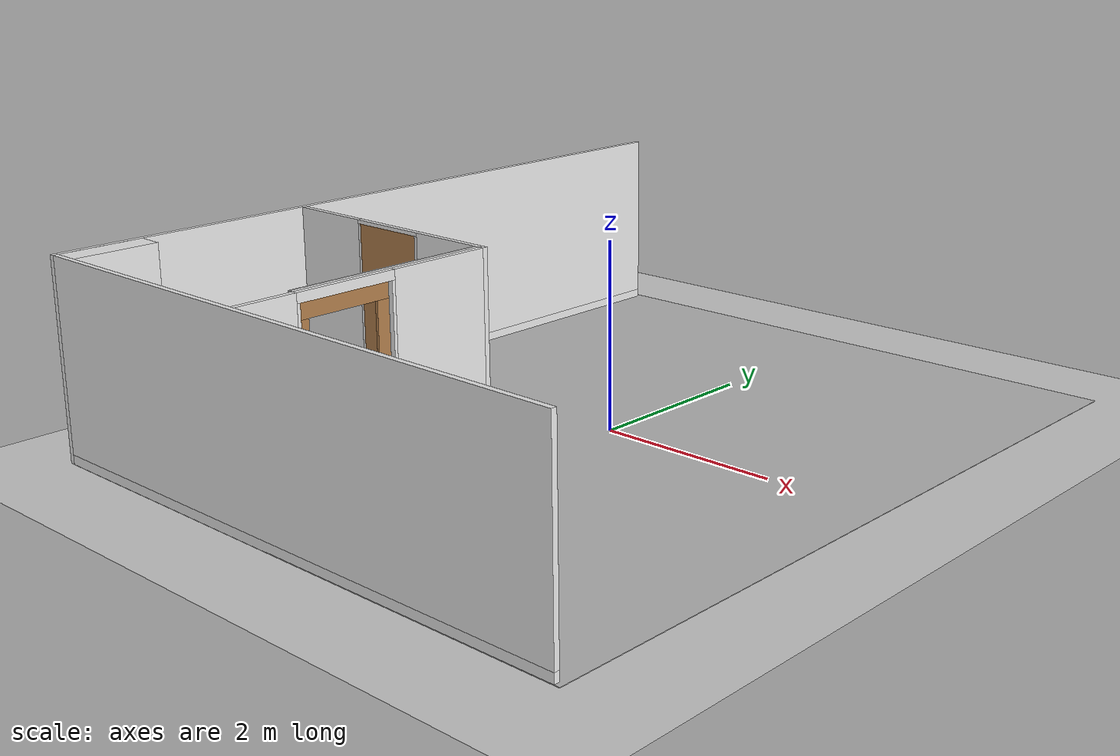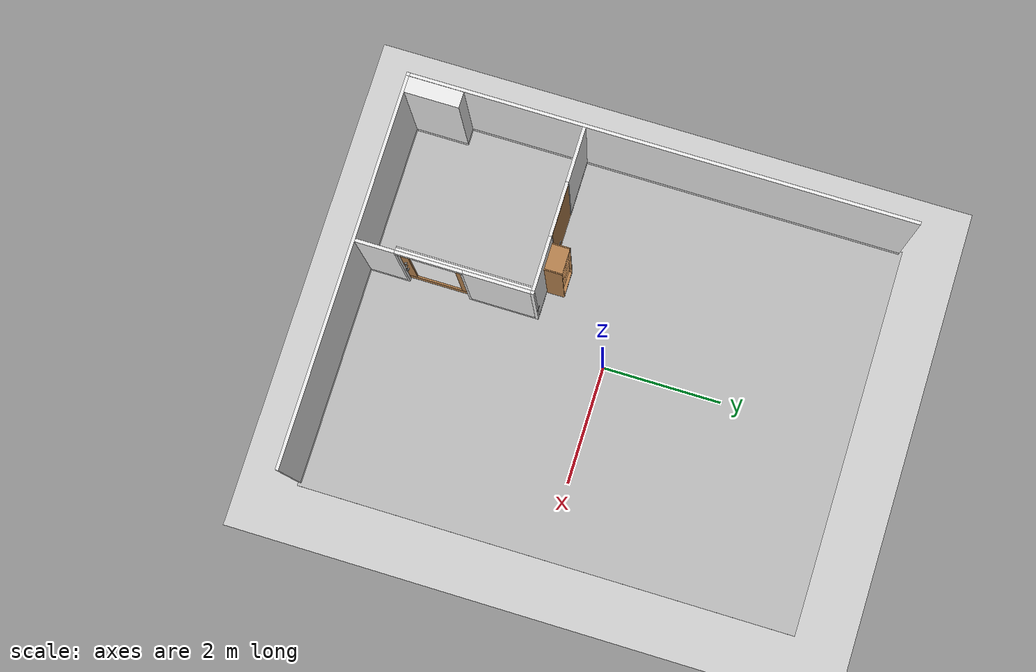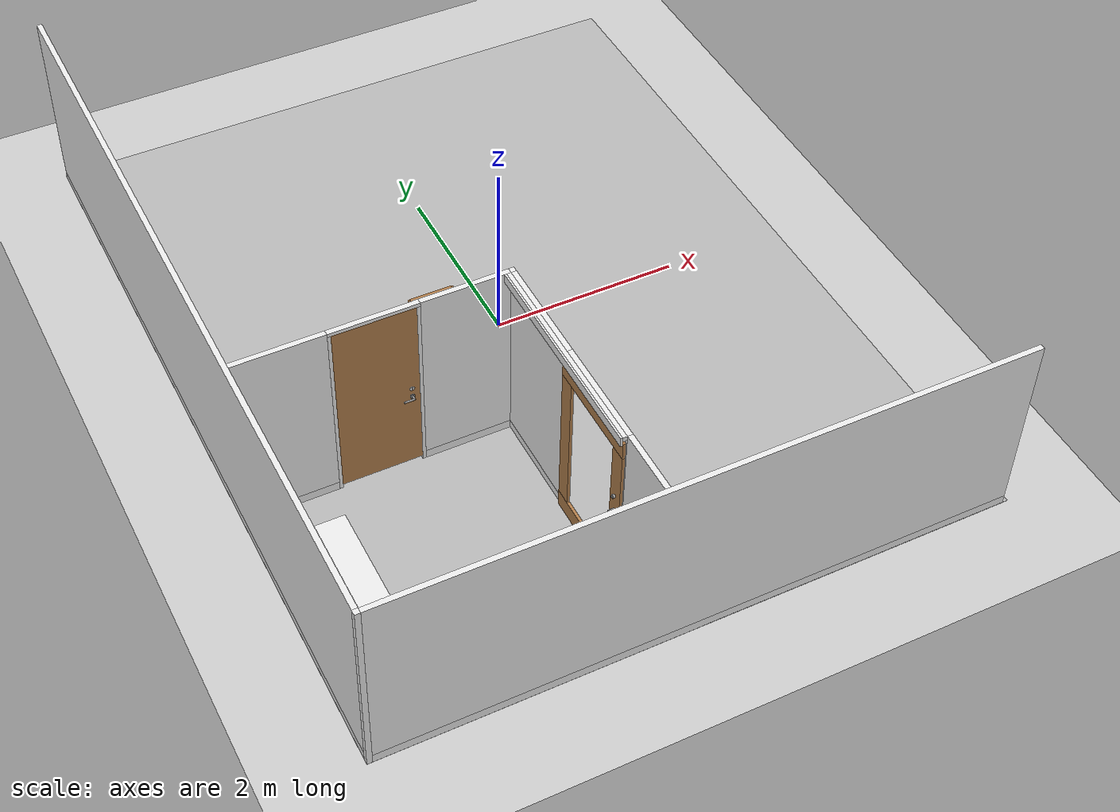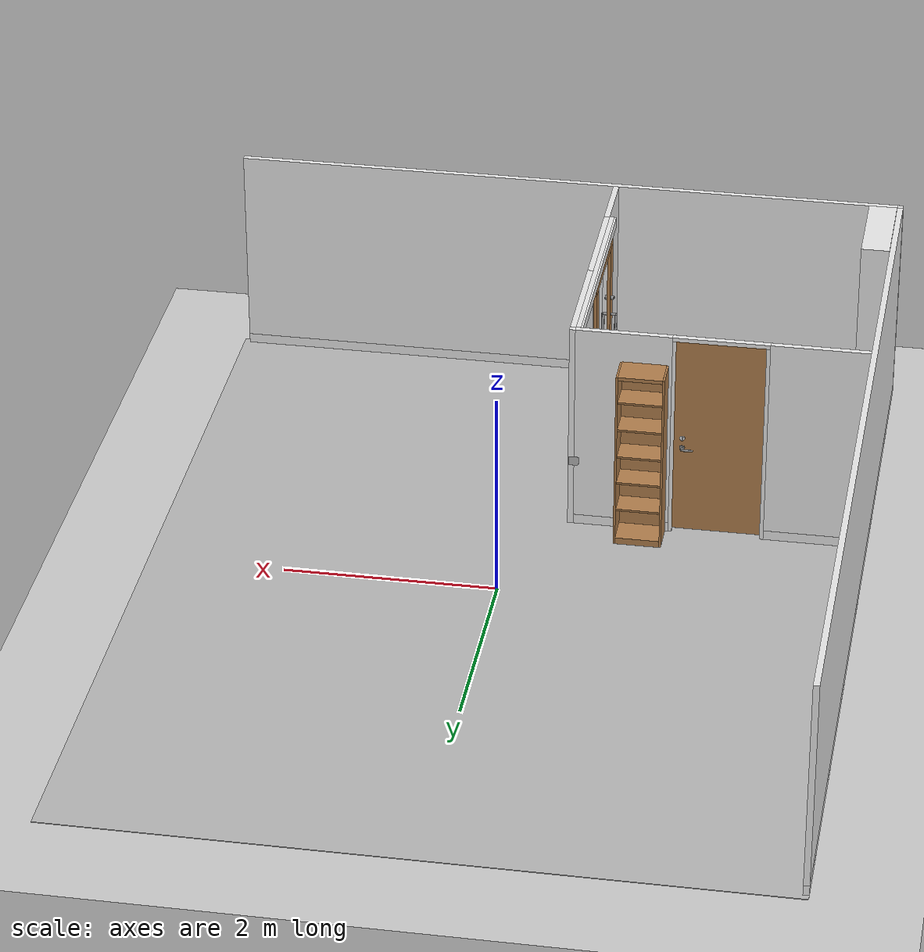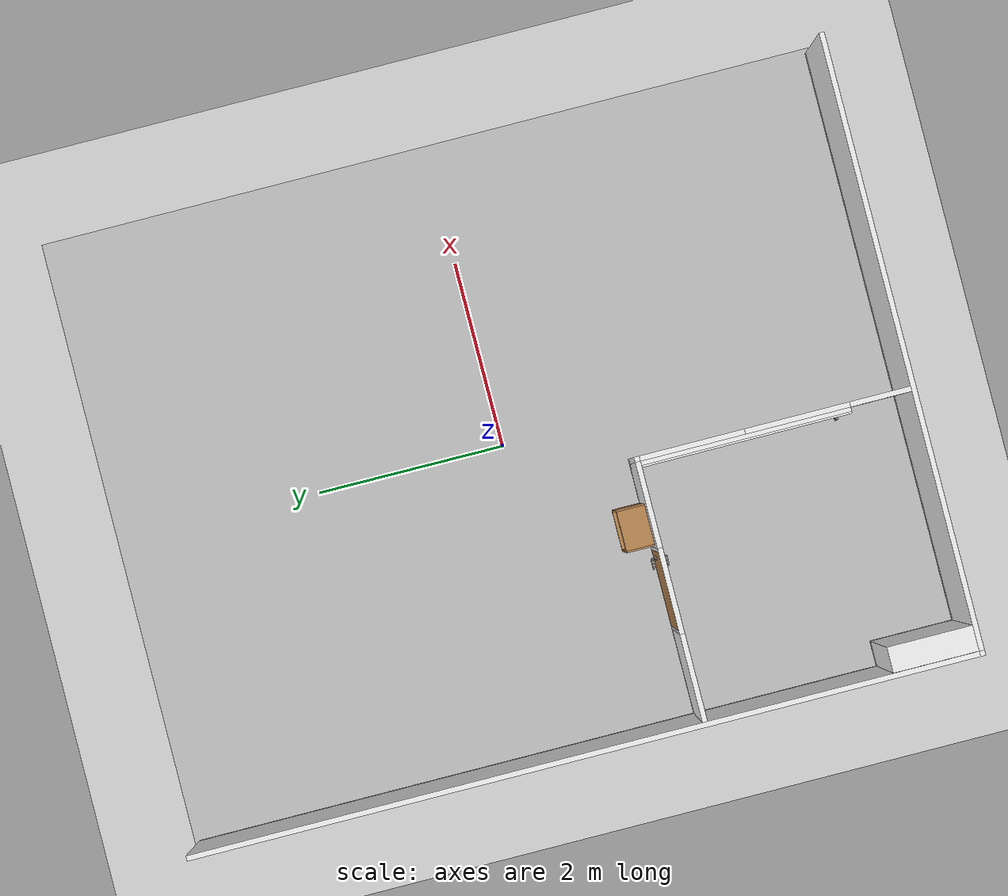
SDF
<sdf version="1.7">
 <world name="default">
  <model name="ground_plane">
   <static>1</static>
   <link name="link">
    <collision name="collision">
     <geometry><plane><normal>0 0 1</normal><size>100 100</size></plane></geometry>
     <surface>
      <contact><collide_bitmask>65535</collide_bitmask></contact>
      <friction><ode><mu>100</mu><mu2>50</mu2></ode></friction>
     </surface>
    </collision>
    <visual name="visual">
     <cast_shadows>0</cast_shadows>
     <geometry><plane><normal>0 0 1</normal><size>100 100</size></plane></geometry>
     <material>
      <script><uri>file://media/materials/scripts/gazebo.material</uri><name>Gazebo/Grey</name></script>
     </material>
    </visual>
   </link>
  </model>
  <model name="gplane">
   <pose>0 0 0.001 0 -0 0</pose>
   <link name="body">
    <visual name="gplane_vis">
     <geometry><plane><normal>0 0 1</normal><size>6.585 8.405</size></plane></geometry>
     <material>
      <script>
       <uri>model://base_materials/carpet/scripts</uri>
       <uri>model://base_materials/carpet/textures</uri>
       <name>carpet/carpet01</name>
      </script>
     </material>
     <cast_shadows>0</cast_shadows>
    </visual>
    <velocity_decay><linear>0</linear><angular>0</angular></velocity_decay>
   </link>
   <static>1</static>
  </model>
  <model name="wall_back_b">
   <link name="link">
    <inertial>
     <mass>50</mass>
     <inertia><ixx>1</ixx><ixy>0</ixy><ixz>0</ixz><iyy>1</iyy><iyz>0</iyz><izz>1</izz></inertia>
    </inertial>
    <visual name="bottom_frame">
     <pose>0 0 0.05 0 -0 0</pose>
     <geometry><box><size>0.055 8.295 0.1</size></box></geometry>
     <material>
      <script><uri>model://base_materials/color/scripts</uri><name>hsr_color/white</name></script>
     </material>
    </visual>
    <collision name="collision_bottom_frame">
     <pose>0 0 0.05 0 -0 0</pose>
     <geometry><box><size>0.055 8.295 0.1</size></box></geometry>
    </collision>
    <visual name="wall">
     <pose>0 0 1.095 0 -0 0</pose>
     <geometry><box><size>0.055 8.295 1.99</size></box></geometry>
     <material>
      <script>
       <uri>model://base_materials/wall/scripts</uri>
       <uri>model://base_materials/wall/textures</uri>
       <name>wall/white_noise</name>
      </script>
     </material>
    </visual>
    <collision name="collision_wall">
     <pose>0 0 1.095 0 -0 0</pose>
     <geometry><box><size>0.055 8.295 1.99</size></box></geometry>
    </collision>
    <velocity_decay><linear>0</linear><angular>0</angular></velocity_decay>
   </link>
   <static>1</static>
   <pose>-3.265 0 0 0 -0 0</pose>
  </model>
  <model name="wall_back_c">
   <link name="link">
    <inertial>
     <mass>50</mass>
     <inertia><ixx>1</ixx><ixy>0</ixy><ixz>0</ixz><iyy>1</iyy><iyz>0</iyz><izz>1</izz></inertia>
    </inertial>
    <visual name="_frame">
     <pose>0 0 1.045 0 -0 0</pose>
     <geometry><box><size>0.055 0.055 2.09</size></box></geometry>
     <material>
      <script><uri>model://base_materials/color/scripts</uri><name>hsr_color/white</name></script>
     </material>
    </visual>
    <collision name="collision_frame">
     <pose>0 0 1.045 0 -0 0</pose>
     <geometry><box><size>0.055 0.055 2.09</size></box></geometry>
    </collision>
    <velocity_decay><linear>0</linear><angular>0</angular></velocity_decay>
   </link>
   <static>1</static>
   <pose>-3.265 -4.175 0 0 -0 0</pose>
  </model>
  <model name="wall_left_a">
   <link name="link">
    <inertial>
     <mass>50</mass>
     <inertia><ixx>1</ixx><ixy>0</ixy><ixz>0</ixz><iyy>1</iyy><iyz>0</iyz><izz>1</izz></inertia>
    </inertial>
    <visual name="bottom_frame">
     <pose>0 0 0.05 0 -0 0</pose>
     <geometry><box><size>0.055 6.475 0.1</size></box></geometry>
     <material>
      <script><uri>model://base_materials/color/scripts</uri><name>hsr_color/white</name></script>
     </material>
    </visual>
    <collision name="collision_bottom_frame">
     <pose>0 0 0.05 0 -0 0</pose>
     <geometry><box><size>0.055 6.475 0.1</size></box></geometry>
    </collision>
    <visual name="wall">
     <pose>0 0 1.095 0 -0 0</pose>
     <geometry><box><size>0.055 6.475 1.99</size></box></geometry>
     <material>
      <script>
       <uri>model://base_materials/wall/scripts</uri>
       <uri>model://base_materials/wall/textures</uri>
       <name>wall/white_noise</name>
      </script>
     </material>
    </visual>
    <collision name="collision_wall">
     <pose>0 0 1.095 0 -0 0</pose>
     <geometry><box><size>0.055 6.475 1.99</size></box></geometry>
    </collision>
    <velocity_decay><linear>0</linear><angular>0</angular></velocity_decay>
   </link>
   <static>1</static>
   <pose>0 -4.175 0 0 -0 1.5708</pose>
  </model>
  <model name="wall_center_long_e">
   <link name="link">
    <inertial>
     <mass>50</mass>
     <inertia><ixx>1</ixx><ixy>0</ixy><ixz>0</ixz><iyy>1</iyy><iyz>0</iyz><izz>1</izz></inertia>
    </inertial>
    <visual name="_frame">
     <pose>0 0 1.045 0 -0 0</pose>
     <geometry><box><size>0.055 0.055 2.09</size></box></geometry>
     <material>
      <script><uri>model://base_materials/color/scripts</uri><name>hsr_color/white</name></script>
     </material>
    </visual>
    <collision name="collision_frame">
     <pose>0 0 1.045 0 -0 0</pose>
     <geometry><box><size>0.055 0.055 2.09</size></box></geometry>
    </collision>
    <velocity_decay><linear>0</linear><angular>0</angular></velocity_decay>
   </link>
   <static>1</static>
   <pose>-0.49 -1.28 0 0 -0 1.5708</pose>
  </model>
  <model name="wall_center_long_f">
   <link name="link">
    <inertial>
     <mass>50</mass>
     <inertia><ixx>1</ixx><ixy>0</ixy><ixz>0</ixz><iyy>1</iyy><iyz>0</iyz><izz>1</izz></inertia>
    </inertial>
    <visual name="bottom_frame">
     <pose>0 0 0.05 0 -0 0</pose>
     <geometry><box><size>0.055 0.9 0.1</size></box></geometry>
     <material>
      <script><uri>model://base_materials/color/scripts</uri><name>hsr_color/white</name></script>
     </material>
    </visual>
    <collision name="collision_bottom_frame">
     <pose>0 0 0.05 0 -0 0</pose>
     <geometry><box><size>0.055 0.9 0.1</size></box></geometry>
    </collision>
    <visual name="wall">
     <pose>0 0 1.095 0 -0 0</pose>
     <geometry><box><size>0.055 0.9 1.99</size></box></geometry>
     <material>
      <script>
       <uri>model://base_materials/wall/scripts</uri>
       <uri>model://base_materials/wall/textures</uri>
       <name>wall/white_noise</name>
      </script>
     </material>
    </visual>
    <visual name="marker_0013">
     <pose>0.035 -0.45 0.69 3.14159 1.57079 -9.3e-05</pose>
     <geometry><box><size>0.09 0.09 0.0001</size></box></geometry>
     <material>
      <script>
       <uri>model://marker/0013/scripts</uri>
       <uri>model://marker/0013/textures</uri>
       <name>Marker/0013</name>
      </script>
     </material>
    </visual>
    <collision name="collision_wall">
     <pose>0 0 1.095 0 -0 0</pose>
     <geometry><box><size>0.055 0.9 1.99</size></box></geometry>
    </collision>
    <velocity_decay><linear>0</linear><angular>0</angular></velocity_decay>
   </link>
   <static>1</static>
   <pose>-0.9675 -1.28 0 0 -0 1.5708</pose>
  </model>
  <model name="wall_center_long_g">
   <link name="link">
    <pose>0 0.45 0 0 -0 0</pose>
    <inertial>
     <mass>50</mass>
     <inertia><ixx>1</ixx><ixy>0</ixy><ixz>0</ixz><iyy>1</iyy><iyz>0</iyz><izz>1</izz></inertia>
    </inertial>
    <visual name="door">
     <pose>0 0 1.05 0 -0 0</pose>
     <geometry><box><size>0.055 0.83 2</size></box></geometry>
     <material>
      <script><uri>model://base_materials/wood/scripts/wood.material</uri><name>base_materials/wood</name></script>
     </material>
    </visual>
    <collision name="collision_door">
     <pose>0 0 1.05 0 -0 0</pose>
     <geometry><box><size>0.055 0.83 2</size></box></geometry>
    </collision>
    <visual name="right_frame">
     <pose>0 0.4325 1.025 0 -0 0</pose>
     <geometry><box><size>0.055 0.035 2.05</size></box></geometry>
     <material>
      <script><uri>model://base_materials/color/scripts</uri><name>hsr_color/white</name></script>
     </material>
    </visual>
    <collision name="collision_right_frame">
     <pose>0 0.4325 1.025 0 -0 0</pose>
     <geometry><box><size>0.055 0.035 2.05</size></box></geometry>
    </collision>
    <visual name="left_frame">
     <pose>0 -0.4325 1.025 0 -0 0</pose>
     <geometry><box><size>0.055 0.035 2.05</size></box></geometry>
     <material>
      <script><uri>model://base_materials/color/scripts</uri><name>hsr_color/white</name></script>
     </material>
    </visual>
    <collision name="collision_left_frame">
     <pose>0 -0.4325 1.025 0 -0 0</pose>
     <geometry><box><size>0.055 0.035 2.05</size></box></geometry>
    </collision>
    <visual name="top_frame">
     <pose>0 0 2.07 0 -0 0</pose>
     <geometry><box><size>0.055 0.9 0.04</size></box></geometry>
     <material>
      <script><uri>model://base_materials/color/scripts</uri><name>hsr_color/white</name></script>
     </material>
    </visual>
    <collision name="collision_top_frame">
     <pose>0 0 2.07 0 -0 0</pose>
     <geometry><box><size>0.055 0.9 0.04</size></box></geometry>
    </collision>
    <visual name="handle_front">
     <pose>0.0775 0.285 0.93 1.5708 -0 0</pose>
     <geometry><cylinder><radius>0.01</radius><length>0.1</length></cylinder></geometry>
     <material>
      <script><uri>model://base_materials/color/scripts</uri><name>hsr_color/grey</name></script>
     </material>
    </visual>
    <collision name="collision_handle_front">
     <pose>0.0775 0.285 0.93 1.5708 -0 0</pose>
     <geometry><cylinder><radius>0.01</radius><length>0.1</length></cylinder></geometry>
    </collision>
    <visual name="handle_back">
     <pose>-0.0775 0.285 0.93 1.5708 -0 0</pose>
     <geometry><cylinder><radius>0.01</radius><length>0.1</length></cylinder></geometry>
     <material>
      <script><uri>model://base_materials/color/scripts</uri><name>hsr_color/grey</name></script>
     </material>
    </visual>
    <collision name="collision_handle_back">
     <pose>-0.0775 0.285 0.93 1.5708 -0 0</pose>
     <geometry><cylinder><radius>0.01</radius><length>0.1</length></cylinder></geometry>
    </collision>
    <visual name="handle_center1">
     <pose>0 0.335 0.93 3.14159 1.57079 3.14159</pose>
     <geometry><cylinder><radius>0.01</radius><length>0.155</length></cylinder></geometry>
     <material>
      <script><uri>model://base_materials/color/scripts</uri><name>hsr_color/grey</name></script>
     </material>
    </visual>
    <collision name="collision_center1">
     <pose>0 0.335 0.93 3.14159 1.57079 3.14159</pose>
     <geometry><cylinder><radius>0.01</radius><length>0.155</length></cylinder></geometry>
    </collision>
    <visual name="handle_center2">
     <pose>0 0.335 0.93 3.14159 1.57079 3.14159</pose>
     <geometry><cylinder><radius>0.025</radius><length>0.075</length></cylinder></geometry>
     <material>
      <script><uri>model://base_materials/color/scripts</uri><name>hsr_color/grey</name></script>
     </material>
    </visual>
    <collision name="collision_center2">
     <pose>0 0.335 0.93 3.14159 1.57079 3.14159</pose>
     <geometry><cylinder><radius>0.025</radius><length>0.075</length></cylinder></geometry>
    </collision>
    <visual name="handle_front_right_corner">
     <pose>0.0775 0.335 0.93 0 -0 0</pose>
     <geometry><sphere><radius>0.01</radius></sphere></geometry>
     <material>
      <script><uri>model://base_materials/color/scripts</uri><name>hsr_color/grey</name></script>
     </material>
    </visual>
    <collision name="collision_handle_front_right_corner">
     <pose>0.0775 0.335 0.93 0 -0 0</pose>
     <geometry><sphere><radius>0.01</radius></sphere></geometry>
    </collision>
    <visual name="handle_front_left_corner">
     <pose>0.0775 0.235 0.93 0 -0 0</pose>
     <geometry><sphere><radius>0.01</radius></sphere></geometry>
     <material>
      <script><uri>model://base_materials/color/scripts</uri><name>hsr_color/grey</name></script>
     </material>
    </visual>
    <collision name="collision_handle_front_left_corner">
     <pose>0.0775 0.235 0.93 0 -0 0</pose>
     <geometry><sphere><radius>0.01</radius></sphere></geometry>
    </collision>
    <visual name="handle_back_right_corner">
     <pose>-0.0775 0.335 0.93 0 -0 0</pose>
     <geometry><sphere><radius>0.01</radius></sphere></geometry>
     <material>
      <script><uri>model://base_materials/color/scripts</uri><name>hsr_color/grey</name></script>
     </material>
    </visual>
    <collision name="collision_handle_back_right_corner">
     <pose>-0.0775 0.335 0.93 0 -0 0</pose>
     <geometry><sphere><radius>0.01</radius></sphere></geometry>
    </collision>
    <visual name="handle_back_left_corner">
     <pose>-0.0775 0.235 0.93 0 -0 0</pose>
     <geometry><sphere><radius>0.01</radius></sphere></geometry>
     <material>
      <script><uri>model://base_materials/color/scripts</uri><name>hsr_color/white</name></script>
     </material>
    </visual>
    <collision name="collision_handle_back_left_corner">
     <pose>-0.0775 0.235 0.93 0 -0 0</pose>
     <geometry><sphere><radius>0.01</radius></sphere></geometry>
    </collision>
    <visual name="handle_lock1">
     <pose>0 0.335 1.03 0 -0 0</pose>
     <geometry><box><size>0.075 0.005 0.04</size></box></geometry>
     <material>
      <script><uri>model://base_materials/color/scripts</uri><name>hsr_color/white</name></script>
     </material>
    </visual>
    <collision name="collision_handle_lock1">
     <pose>0 0.335 1.03 0 -0 0</pose>
     <geometry><box><size>0.075 0.005 0.04</size></box></geometry>
    </collision>
    <visual name="handle_lock2">
     <pose>0 0.335 1.03 3.14159 1.57079 3.14159</pose>
     <geometry><cylinder><radius>0.025</radius><length>0.065</length></cylinder></geometry>
     <material>
      <script><uri>model://base_materials/color/scripts</uri><name>hsr_color/white</name></script>
     </material>
    </visual>
    <collision name="collision_handle_lock2">
     <pose>0 0.335 1.03 3.14159 1.57079 3.14159</pose>
     <geometry><cylinder><radius>0.025</radius><length>0.065</length></cylinder></geometry>
    </collision>
    <velocity_decay><linear>0</linear><angular>0</angular></velocity_decay>
   </link>
   <static>1</static>
   <pose>-2.3175 -1.28 0 0 0 -1.5708</pose>
  </model>
  <model name="wall_center_long_h">
   <link name="link">
    <inertial>
     <mass>50</mass>
     <inertia><ixx>1</ixx><ixy>0</ixy><ixz>0</ixz><iyy>1</iyy><iyz>0</iyz><izz>1</izz></inertia>
    </inertial>
    <visual name="bottom_frame">
     <pose>0 0 0.05 0 -0 0</pose>
     <geometry><box><size>0.055 0.92 0.1</size></box></geometry>
     <material>
      <script><uri>model://base_materials/color/scripts</uri><name>hsr_color/white</name></script>
     </material>
    </visual>
    <collision name="collision_bottom_frame">
     <pose>0 0 0.05 0 -0 0</pose>
     <geometry><box><size>0.055 0.92 0.1</size></box></geometry>
    </collision>
    <visual name="wall">
     <pose>0 0 1.095 0 -0 0</pose>
     <geometry><box><size>0.055 0.92 1.99</size></box></geometry>
     <material>
      <script>
       <uri>model://base_materials/wall/scripts</uri>
       <uri>model://base_materials/wall/textures</uri>
       <name>wall/white_noise</name>
      </script>
     </material>
    </visual>
    <collision name="collision_wall">
     <pose>0 0 1.095 0 -0 0</pose>
     <geometry><box><size>0.055 0.92 1.99</size></box></geometry>
    </collision>
    <velocity_decay><linear>0</linear><angular>0</angular></velocity_decay>
   </link>
   <static>1</static>
   <pose>-2.7775 -1.28 0 0 -0 1.5708</pose>
  </model>
  <model name="wall_center_short_a">
   <link name="link">
    <inertial>
     <mass>50</mass>
     <inertia><ixx>1</ixx><ixy>0</ixy><ixz>0</ixz><iyy>1</iyy><iyz>0</iyz><izz>1</izz></inertia>
    </inertial>
    <visual name="bottom_frame">
     <pose>0 0 0.05 0 -0 0</pose>
     <geometry><box><size>0.055 1.1 0.1</size></box></geometry>
     <material>
      <script><uri>model://base_materials/color/scripts</uri><name>hsr_color/white</name></script>
     </material>
    </visual>
    <collision name="collision_bottom_frame">
     <pose>0 0 0.05 0 -0 0</pose>
     <geometry><box><size>0.055 1.1 0.1</size></box></geometry>
    </collision>
    <visual name="wall">
     <pose>0 0 1.095 0 -0 0</pose>
     <geometry><box><size>0.055 1.1 1.99</size></box></geometry>
     <material>
      <script>
       <uri>model://base_materials/wall/scripts</uri>
       <uri>model://base_materials/wall/textures</uri>
       <name>wall/white_noise</name>
      </script>
     </material>
    </visual>
    <collision name="collision_wall">
     <pose>0 0 1.095 0 -0 0</pose>
     <geometry><box><size>0.055 1.1 1.99</size></box></geometry>
    </collision>
    <velocity_decay><linear>0</linear><angular>0</angular></velocity_decay>
   </link>
   <static>1</static>
   <pose>-0.49 -1.8575 0 0 -0 0</pose>
  </model>
  <model name="sliding_door_2">
   <joint name="frame_to_world_joint" type="revolute">
    <parent>world</parent>
    <child>frame</child>
    <axis>
     <xyz expressed_in="__model__">0 0 1</xyz>
     <limit><upper>0</upper><lower>0</lower></limit>
     <dynamics><spring_reference>0</spring_reference><spring_stiffness>0</spring_stiffness></dynamics>
    </axis>
   </joint>
   <link name="frame">
    <inertial>
     <mass>50</mass>
     <inertia><ixx>1</ixx><ixy>0</ixy><ixz>0</ixz><iyy>1</iyy><iyz>0</iyz><izz>1</izz></inertia>
    </inertial>
    <visual name="right_frame">
     <pose>0 0.5325 0.995 0 -0 0</pose>
     <geometry><box><size>0.055 0.035 1.99</size></box></geometry>
     <material>
      <script><uri>model://base_materials/color/scripts</uri><name>hsr_color/white</name></script>
     </material>
    </visual>
    <collision name="collision_right_frame">
     <pose>0 0.5325 0.995 0 -0 0</pose>
     <geometry><box><size>0.055 0.035 1.99</size></box></geometry>
    </collision>
    <visual name="left_frame">
     <pose>0 -0.5325 0.995 0 -0 0</pose>
     <geometry><box><size>0.055 0.035 1.99</size></box></geometry>
     <material>
      <script><uri>model://base_materials/color/scripts</uri><name>hsr_color/white</name></script>
     </material>
    </visual>
    <collision name="collision_left_frame">
     <pose>0 -0.5325 0.995 0 -0 0</pose>
     <geometry><box><size>0.055 0.035 1.99</size></box></geometry>
    </collision>
    <visual name="top_frame">
     <pose>0 0 2.04 0 -0 0</pose>
     <geometry><box><size>0.055 1.1 0.1</size></box></geometry>
     <material>
      <script><uri>model://base_materials/color/scripts</uri><name>hsr_color/white</name></script>
     </material>
    </visual>
    <collision name="collision_top_frame">
     <pose>0 0 2.04 0 -0 0</pose>
     <geometry><box><size>0.055 1.1 0.1</size></box></geometry>
    </collision>
    <visual name="top_guard">
     <pose>0.05 -0.55 2.065 0 -0 0</pose>
     <geometry><box><size>0.045 2.2 0.05</size></box></geometry>
     <material>
      <script><uri>model://base_materials/color/scripts</uri><name>hsr_color/white</name></script>
     </material>
    </visual>
    <collision name="collision_top_guard">
     <pose>0.05 -0.55 2.065 0 -0 0</pose>
     <geometry><box><size>0.045 2.2 0.05</size></box></geometry>
    </collision>
    <visual name="front_guard">
     <pose>0.0825 -0.55 2.04 0 -0 0</pose>
     <geometry><box><size>0.02 2.2 0.1</size></box></geometry>
     <material>
      <script><uri>model://base_materials/color/scripts</uri><name>hsr_color/white</name></script>
     </material>
    </visual>
    <collision name="collision_front_guard">
     <pose>0.0825 -0.55 2.04 0 -0 0</pose>
     <geometry><box><size>0.02 2.2 0.1</size></box></geometry>
    </collision>
   </link>
   <link name="door">
    <pose>-0.0275 0 0 0 -0 0</pose>
    <visual name="top_frame">
     <pose>0.0775 0 1.9075 0 -0 0</pose>
     <geometry><box><size>0.03 1.1 0.185</size></box></geometry>
     <material>
      <script><uri>model://base_materials/wood/scripts/wood.material</uri><name>base_materials/wood</name></script>
     </material>
    </visual>
    <collision name="collision_top_frame">
     <pose>0.0775 0 1.9075 0 -0 0</pose>
     <geometry><box><size>0.03 1.1 0.185</size></box></geometry>
    </collision>
    <visual name="right_frame">
     <pose>0.0775 0.4675 1.025 0 -0 0</pose>
     <geometry><box><size>0.03 0.165 1.58</size></box></geometry>
     <material>
      <script><uri>model://base_materials/wood/scripts/wood.material</uri><name>base_materials/wood</name></script>
     </material>
    </visual>
    <collision name="collision_right_frame">
     <pose>0.0775 0.4675 1.025 0 -0 0</pose>
     <geometry><box><size>0.03 0.165 1.58</size></box></geometry>
    </collision>
    <visual name="left_frame">
     <pose>0.0775 -0.4675 1.025 0 -0 0</pose>
     <geometry><box><size>0.03 0.165 1.58</size></box></geometry>
     <material>
      <script><uri>model://base_materials/wood/scripts/wood.material</uri><name>base_materials/wood</name></script>
     </material>
    </visual>
    <collision name="collision_left_frame">
     <pose>0.0775 -0.4675 1.025 0 -0 0</pose>
     <geometry><box><size>0.03 0.165 1.58</size></box></geometry>
    </collision>
    <visual name="bottom_frame">
     <pose>0.0775 0 0.1425 0 -0 0</pose>
     <geometry><box><size>0.03 1.1 0.185</size></box></geometry>
     <material>
      <script><uri>model://base_materials/wood/scripts/wood.material</uri><name>base_materials/wood</name></script>
     </material>
    </visual>
    <collision name="collision_bottom_frame">
     <pose>0.0775 0 0.1425 0 -0 0</pose>
     <geometry><box><size>0.03 1.1 0.185</size></box></geometry>
    </collision>
    <visual name="handle_top_frame">
     <pose>0.0775 0.4675 1.0675 3.14159 1.57079 3.14159</pose>
     <geometry><cylinder><radius>0.0125</radius><length>0.125</length></cylinder></geometry>
     <material>
      <script><uri>model://base_materials/color/scripts</uri><name>hsr_color/grey</name></script>
     </material>
    </visual>
    <collision name="collision_handle_top_frame">
     <pose>0.0775 0.4675 1.0675 3.14159 1.57079 3.14159</pose>
     <geometry><cylinder><radius>0.0125</radius><length>0.125</length></cylinder></geometry>
    </collision>
    <visual name="handle_bottom_frame">
     <pose>0.0775 0.4675 0.8425 3.14159 1.57079 3.14159</pose>
     <geometry><cylinder><radius>0.0125</radius><length>0.125</length></cylinder></geometry>
     <material>
      <script><uri>model://base_materials/color/scripts</uri><name>hsr_color/grey</name></script>
     </material>
    </visual>
    <collision name="collision_handle_bottom_frame">
     <pose>0.0775 0.4675 0.8425 3.14159 1.57079 3.14159</pose>
     <geometry><cylinder><radius>0.0125</radius><length>0.125</length></cylinder></geometry>
    </collision>
    <visual name="handle_front_frame">
     <pose>0.14 0.4675 0.955 0 -0 0</pose>
     <geometry><cylinder><radius>0.0125</radius><length>0.225</length></cylinder></geometry>
     <material>
      <script><uri>model://base_materials/color/scripts</uri><name>hsr_color/grey</name></script>
     </material>
    </visual>
    <collision name="collision_handle_front_frame">
     <pose>0.14 0.4675 0.955 0 -0 0</pose>
     <geometry><cylinder><radius>0.0125</radius><length>0.225</length></cylinder></geometry>
    </collision>
    <visual name="marker_1103">
     <pose>0.1525 0.4675 0.955 3.14159 1.57079 -9.3e-05</pose>
     <geometry><box><size>0.045 0.045 0.0001</size></box></geometry>
     <material>
      <script>
       <uri>model://marker/1103/scripts</uri>
       <uri>model://marker/1103/textures</uri>
       <name>Marker/1103</name>
      </script>
     </material>
    </visual>
    <visual name="handle_back_frame">
     <pose>0.015 0.4675 0.955 0 -0 0</pose>
     <geometry><cylinder><radius>0.0125</radius><length>0.225</length></cylinder></geometry>
     <material>
      <script><uri>model://base_materials/color/scripts</uri><name>hsr_color/grey</name></script>
     </material>
    </visual>
    <collision name="collision_handle_back_frame">
     <pose>0.015 0.4675 0.955 0 -0 0</pose>
     <geometry><cylinder><radius>0.0125</radius><length>0.225</length></cylinder></geometry>
    </collision>
    <visual name="marker_1104">
     <pose>0.0025 0.4675 0.955 3.14159 1.57079 3.14159</pose>
     <geometry><box><size>0.045 0.045 0.0001</size></box></geometry>
     <material>
      <script>
       <uri>model://marker/1104/scripts</uri>
       <uri>model://marker/1104/textures</uri>
       <name>Marker/1104</name>
      </script>
     </material>
    </visual>
    <visual name="handle_front_top_corner">
     <pose>0.14 0.4675 1.0675 0 -0 0</pose>
     <geometry><sphere><radius>0.0125</radius></sphere></geometry>
     <material>
      <script><uri>model://base_materials/color/scripts</uri><name>hsr_color/grey</name></script>
     </material>
    </visual>
    <collision name="collision_handle_front_top_corner">
     <pose>0.14 0.4675 1.0675 0 -0 0</pose>
     <geometry><sphere><radius>0.0125</radius></sphere></geometry>
    </collision>
    <visual name="handle_front_bottom_corner">
     <pose>0.14 0.4675 0.8425 0 -0 0</pose>
     <geometry><sphere><radius>0.0125</radius></sphere></geometry>
     <material>
      <script><uri>model://base_materials/color/scripts</uri><name>hsr_color/grey</name></script>
     </material>
    </visual>
    <collision name="collision_handle_front_bottom_corner">
     <pose>0.14 0.4675 0.8425 0 -0 0</pose>
     <geometry><sphere><radius>0.0125</radius></sphere></geometry>
    </collision>
    <visual name="handle_back_top_corner">
     <pose>0.015 0.4675 1.0675 0 -0 0</pose>
     <geometry><sphere><radius>0.0125</radius></sphere></geometry>
     <material>
      <script><uri>model://base_materials/color/scripts</uri><name>hsr_color/grey</name></script>
     </material>
    </visual>
    <collision name="collision_handle_back_top_corner">
     <pose>0.015 0.4675 1.0675 0 -0 0</pose>
     <geometry><sphere><radius>0.0125</radius></sphere></geometry>
    </collision>
    <visual name="handle_back_bottom_corner">
     <pose>0.015 0.4675 0.8425 0 -0 0</pose>
     <geometry><sphere><radius>0.0125</radius></sphere></geometry>
     <material>
      <script><uri>model://base_materials/color/scripts</uri><name>hsr_color/grey</name></script>
     </material>
    </visual>
    <collision name="collision_handle_back_bottom_corner">
     <pose>0.015 0.4675 0.8425 0 -0 0</pose>
     <geometry><sphere><radius>0.0125</radius></sphere></geometry>
    </collision>
    <visual name="handle_lock1">
     <pose>0.0775 0.4675 1.25 3.14159 1.57079 3.14159</pose>
     <geometry><cylinder><radius>0.02</radius><length>0.08</length></cylinder></geometry>
     <material>
      <script><uri>model://base_materials/color/scripts</uri><name>hsr_color/grey</name></script>
     </material>
    </visual>
    <collision name="collision_handle_lock1">
     <pose>0.0775 0.4675 1.25 3.14159 1.57079 3.14159</pose>
     <geometry><cylinder><radius>0.02</radius><length>0.08</length></cylinder></geometry>
    </collision>
    <visual name="handle_lock2">
     <pose>0.0775 0.4675 1.25 3.14159 1.57079 3.14159</pose>
     <geometry><cylinder><radius>0.015</radius><length>0.09</length></cylinder></geometry>
     <material>
      <script><uri>model://base_materials/color/scripts</uri><name>hsr_color/grey</name></script>
     </material>
    </visual>
    <collision name="collision_handle_lock2">
     <pose>0.0775 0.4675 1.25 3.14159 1.57079 3.14159</pose>
     <geometry><cylinder><radius>0.015</radius><length>0.09</length></cylinder></geometry>
    </collision>
    <velocity_decay><linear>0</linear><angular>0</angular></velocity_decay>
    <inertial>
     <inertia><ixx>1</ixx><ixy>0</ixy><ixz>0</ixz><iyy>1</iyy><iyz>0</iyz><izz>1</izz></inertia>
     <mass>1</mass>
    </inertial>
   </link>
   <joint name="top_sliding_joint" type="prismatic">
    <parent>frame</parent>
    <child>door</child>
    <axis>
     <dynamics>
      <damping>1</damping>
      <friction>1</friction>
      <spring_reference>0</spring_reference>
      <spring_stiffness>0</spring_stiffness>
     </dynamics>
     <limit><lower>-1</lower><upper>0</upper></limit>
     <xyz expressed_in="__model__">0 1 0</xyz>
    </axis>
   </joint>
   <static>0</static>
   <pose>-0.49 -2.9575 0 0 2e-06 3.14159</pose>
  </model>
  <model name="wall_center_short_c">
   <link name="link">
    <inertial>
     <mass>50</mass>
     <inertia><ixx>1</ixx><ixy>0</ixy><ixz>0</ixz><iyy>1</iyy><iyz>0</iyz><izz>1</izz></inertia>
    </inertial>
    <visual name="bottom_frame">
     <pose>0 0 0.05 0 -0 0</pose>
     <geometry><box><size>0.055 0.64 0.1</size></box></geometry>
     <material>
      <script><uri>model://base_materials/color/scripts</uri><name>hsr_color/white</name></script>
     </material>
    </visual>
    <collision name="collision_bottom_frame">
     <pose>0 0 0.05 0 -0 0</pose>
     <geometry><box><size>0.055 0.64 0.1</size></box></geometry>
    </collision>
    <visual name="wall">
     <pose>0 0 1.095 0 -0 0</pose>
     <geometry><box><size>0.055 0.64 1.99</size></box></geometry>
     <material>
      <script>
       <uri>model://base_materials/wall/scripts</uri>
       <uri>model://base_materials/wall/textures</uri>
       <name>wall/white_noise</name>
      </script>
     </material>
    </visual>
    <collision name="collision_wall">
     <pose>0 0 1.095 0 -0 0</pose>
     <geometry><box><size>0.055 0.64 1.99</size></box></geometry>
    </collision>
    <velocity_decay><linear>0</linear><angular>0</angular></velocity_decay>
   </link>
   <static>1</static>
   <pose>-0.49 -3.8275 0 0 -0 0</pose>
  </model>
  <model name="wall_inner_block">
   <link name="link">
    <inertial>
     <mass>50</mass>
     <inertia><ixx>1</ixx><ixy>0</ixy><ixz>0</ixz><iyy>1</iyy><iyz>0</iyz><izz>1</izz></inertia>
    </inertial>
    <visual name="bottom_frame">
     <pose>0 0 0.05 0 -0 0</pose>
     <geometry><box><size>0.27 0.9 0.1</size></box></geometry>
     <material>
      <script><uri>model://base_materials/color/scripts</uri><name>hsr_color/white</name></script>
     </material>
    </visual>
    <collision name="collision_bottom_frame">
     <pose>0 0 0.05 0 -0 0</pose>
     <geometry><box><size>0.27 0.9 0.1</size></box></geometry>
    </collision>
    <visual name="wall">
     <pose>0 0 1.095 0 -0 0</pose>
     <geometry><box><size>0.27 0.9 1.99</size></box></geometry>
     <material>
      <script>
       <uri>model://base_materials/wall/scripts</uri>
       <uri>model://base_materials/wall/textures</uri>
       <name>wall/white_noise</name>
      </script>
     </material>
    </visual>
    <collision name="collision_wall">
     <pose>0 0 1.095 0 -0 0</pose>
     <geometry><box><size>0.27 0.9 1.99</size></box></geometry>
    </collision>
    <velocity_decay><linear>0</linear><angular>0</angular></velocity_decay>
   </link>
   <static>1</static>
   <pose>-3.1 -3.7 0 0 -0 0</pose>
  </model>
  <model name="high_shelf">
   <link name="link">
    <inertial>
     <mass>5</mass>
     <inertia><ixx>1</ixx><ixy>0</ixy><ixz>0</ixz><iyy>1</iyy><iyz>0</iyz><izz>1</izz></inertia>
    </inertial>
    <visual name="left_board">
     <pose>-0.1475 0.009 0.898 0 -0 0</pose>
     <geometry><box><size>0.295 0.018 1.796</size></box></geometry>
     <material>
      <script>
       <uri>model://base_materials/wood/scripts</uri>
       <uri>model://base_materials/wood/textures</uri>
       <name>base_materials/light_wood</name>
      </script>
     </material>
    </visual>
    <collision name="collision_left_board">
     <pose>-0.1475 0.009 0.898 0 -0 0</pose>
     <geometry><box><size>0.295 0.018 1.796</size></box></geometry>
    </collision>
    <visual name="right_board">
     <pose>-0.1475 0.441 0.898 0 -0 0</pose>
     <geometry><box><size>0.295 0.018 1.796</size></box></geometry>
     <material>
      <script>
       <uri>model://base_materials/wood/scripts</uri>
       <uri>model://base_materials/wood/textures</uri>
       <name>base_materials/light_wood</name>
      </script>
     </material>
    </visual>
    <collision name="collision_right_board">
     <pose>-0.1475 0.441 0.898 0 -0 0</pose>
     <geometry><box><size>0.295 0.018 1.796</size></box></geometry>
    </collision>
    <visual name="top_board">
     <pose>-0.1475 0.225 1.7825 0 -0 0</pose>
     <geometry><box><size>0.295 0.414 0.035</size></box></geometry>
     <material>
      <script>
       <uri>model://base_materials/wood/scripts</uri>
       <uri>model://base_materials/wood/textures</uri>
       <name>base_materials/light_wood</name>
      </script>
     </material>
    </visual>
    <collision name="collision_top_board">
     <pose>-0.1475 0.225 1.7825 0 -0 0</pose>
     <geometry><box><size>0.295 0.414 0.035</size></box></geometry>
    </collision>
    <visual name="1st_shelf">
     <pose>-0.162 0.225 1.51 0 -0 0</pose>
     <geometry><box><size>0.266 0.414 0.018</size></box></geometry>
     <material>
      <script>
       <uri>model://base_materials/wood/scripts</uri>
       <uri>model://base_materials/wood/textures</uri>
       <name>base_materials/light_wood</name>
      </script>
     </material>
    </visual>
    <collision name="collision_1st_shelf">
     <pose>-0.162 0.225 1.51 0 -0 0</pose>
     <geometry><box><size>0.266 0.414 0.018</size></box></geometry>
    </collision>
    <visual name="2nd_shelf">
     <pose>-0.162 0.225 1.22 0 -0 0</pose>
     <geometry><box><size>0.266 0.414 0.018</size></box></geometry>
     <material>
      <script>
       <uri>model://base_materials/wood/scripts</uri>
       <uri>model://base_materials/wood/textures</uri>
       <name>base_materials/light_wood</name>
      </script>
     </material>
    </visual>
    <collision name="collision_2nd_shelf">
     <pose>-0.162 0.225 1.22 0 -0 0</pose>
     <geometry><box><size>0.266 0.414 0.018</size></box></geometry>
    </collision>
    <visual name="3rd_shelf">
     <pose>-0.162 0.225 0.93 0 -0 0</pose>
     <geometry><box><size>0.266 0.414 0.018</size></box></geometry>
     <material>
      <script>
       <uri>model://base_materials/wood/scripts</uri>
       <uri>model://base_materials/wood/textures</uri>
       <name>base_materials/light_wood</name>
      </script>
     </material>
    </visual>
    <collision name="collision_3rd_shelf">
     <pose>-0.162 0.225 0.93 0 -0 0</pose>
     <geometry><box><size>0.266 0.414 0.018</size></box></geometry>
    </collision>
    <visual name="4th_shelf">
     <pose>-0.162 0.225 0.65 0 -0 0</pose>
     <geometry><box><size>0.266 0.414 0.018</size></box></geometry>
     <material>
      <script>
       <uri>model://base_materials/wood/scripts</uri>
       <uri>model://base_materials/wood/textures</uri>
       <name>base_materials/light_wood</name>
      </script>
     </material>
    </visual>
    <collision name="collision_4th_shelf">
     <pose>-0.162 0.225 0.65 0 -0 0</pose>
     <geometry><box><size>0.266 0.414 0.018</size></box></geometry>
    </collision>
    <visual name="5th_shelf">
     <pose>-0.162 0.225 0.36 0 -0 0</pose>
     <geometry><box><size>0.266 0.414 0.018</size></box></geometry>
     <material>
      <script>
       <uri>model://base_materials/wood/scripts</uri>
       <uri>model://base_materials/wood/textures</uri>
       <name>base_materials/light_wood</name>
      </script>
     </material>
    </visual>
    <collision name="collision_5th_shelf">
     <pose>-0.162 0.225 0.36 0 -0 0</pose>
     <geometry><box><size>0.266 0.414 0.018</size></box></geometry>
    </collision>
    <visual name="bottom_board">
     <pose>-0.1475 0.225 0.035 0 -0 0</pose>
     <geometry><box><size>0.295 0.414 0.07</size></box></geometry>
     <material>
      <script>
       <uri>model://base_materials/wood/scripts</uri>
       <uri>model://base_materials/wood/textures</uri>
       <name>base_materials/light_wood</name>
      </script>
     </material>
    </visual>
    <collision name="collision_bottom_board">
     <pose>-0.1475 0.225 0.035 0 -0 0</pose>
     <geometry><box><size>0.295 0.414 0.07</size></box></geometry>
    </collision>
    <visual name="back_board">
     <pose>-0.286 0.225 0.898 0 -0 0</pose>
     <geometry><box><size>0.018 0.414 1.796</size></box></geometry>
     <material>
      <script>
       <uri>model://base_materials/wood/scripts</uri>
       <uri>model://base_materials/wood/textures</uri>
       <name>base_materials/light_wood</name>
      </script>
     </material>
    </visual>
    <collision name="collision_back_board">
     <pose>-0.286 0.225 0.898 0 -0 0</pose>
     <geometry><box><size>0.018 0.414 1.796</size></box></geometry>
    </collision>
    <velocity_decay><linear>0</linear><angular>0</angular></velocity_decay>
   </link>
   <static>1</static>
   <pose>-0.94 -0.95 0 0 -0 1.5708</pose>
  </model>
 </world>
</sdf>
